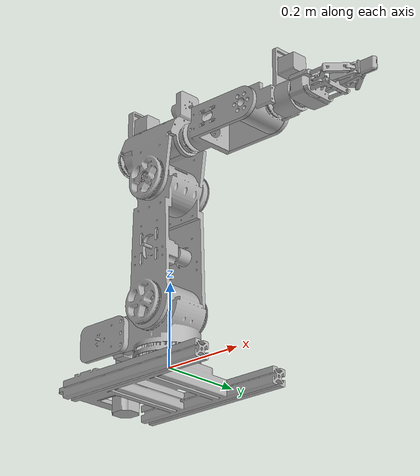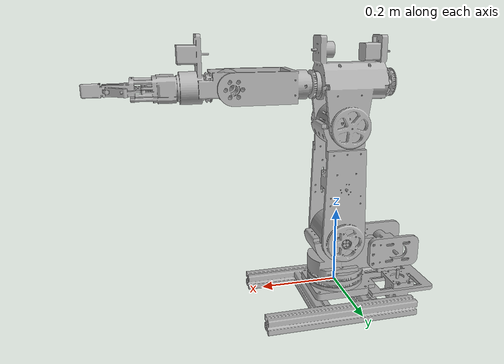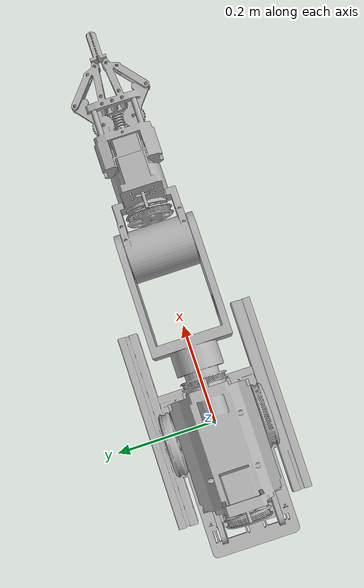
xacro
<?xml version="1.0" ?>
<robot name="urdf_assembly_2" xmlns:xacro="http://www.ros.org/wiki/xacro">

<xacro:include filename="materials.xacro" />
<xacro:include filename="urdf_assembly_2.trans" />
<xacro:include filename="urdf_assembly_2.gazebo" />
<link name="base_link">
  <inertial>
    <origin xyz="-0.0342362509848714 -0.0039161533991028665 -0.02839103797627507" rpy="0 0 0"/>
    <mass value="2.2003666449760275"/>
    <inertia ixx="0.015633" iyy="0.02691" izz="0.040737" ixy="0.000363" iyz="0.000114" ixz="0.001133"/>
  </inertial>
  <visual>
    <origin xyz="0 0 0" rpy="0 0 0"/>
    <geometry>
      <mesh filename="meshes/base_link.stl" scale="0.001 0.001 0.001"/>
    </geometry>
    <material name="silver"/>
  </visual>
  <collision>
    <origin xyz="0 0 0" rpy="0 0 0"/>
    <geometry>
      <mesh filename="meshes/base_link.stl" scale="0.001 0.001 0.001"/>
    </geometry>
  </collision>
</link>

<link name="link_1_1">
  <inertial>
    <origin xyz="-0.03473888377200399 0.0006648494543459067 0.07800139222078076" rpy="0 0 0"/>
    <mass value="15.038966546923882"/>
    <inertia ixx="0.05038" iyy="0.107214" izz="0.097015" ixy="0.001073" iyz="-0.000117" ixz="0.005378"/>
  </inertial>
  <visual>
    <origin xyz="0.002859 0.005179 0.00232" rpy="0 0 0"/>
    <geometry>
      <mesh filename="meshes/link_1_1.stl" scale="0.001 0.001 0.001"/>
    </geometry>
    <material name="silver"/>
  </visual>
  <collision>
    <origin xyz="0.002859 0.005179 0.00232" rpy="0 0 0"/>
    <geometry>
      <mesh filename="meshes/link_1_1.stl" scale="0.001 0.001 0.001"/>
    </geometry>
  </collision>
</link>

<link name="link_2_1">
  <inertial>
    <origin xyz="2.601990558093962e-05 -0.0008884927878232626 0.13687536190298447" rpy="0 0 0"/>
    <mass value="12.313102715674546"/>
    <inertia ixx="0.196874" iyy="0.179594" izz="0.037663" ixy="-0.0" iyz="-0.000195" ixz="-5.2e-05"/>
  </inertial>
  <visual>
    <origin xyz="0.002859 0.005179 -0.13368" rpy="0 0 0"/>
    <geometry>
      <mesh filename="meshes/link_2_1.stl" scale="0.001 0.001 0.001"/>
    </geometry>
    <material name="silver"/>
  </visual>
  <collision>
    <origin xyz="0.002859 0.005179 -0.13368" rpy="0 0 0"/>
    <geometry>
      <mesh filename="meshes/link_2_1.stl" scale="0.001 0.001 0.001"/>
    </geometry>
  </collision>
</link>

<link name="link_3_1">
  <inertial>
    <origin xyz="-0.01628301021334254 0.00016122524353749754 0.07497927196563697" rpy="0 0 0"/>
    <mass value="9.121346283290388"/>
    <inertia ixx="0.062586" iyy="0.063998" izz="0.038355" ixy="-2.5e-05" iyz="0.000107" ixz="0.007821"/>
  </inertial>
  <visual>
    <origin xyz="0.002698 0.005179 -0.432846" rpy="0 0 0"/>
    <geometry>
      <mesh filename="meshes/link_3_1.stl" scale="0.001 0.001 0.001"/>
    </geometry>
    <material name="silver"/>
  </visual>
  <collision>
    <origin xyz="0.002698 0.005179 -0.432846" rpy="0 0 0"/>
    <geometry>
      <mesh filename="meshes/link_3_1.stl" scale="0.001 0.001 0.001"/>
    </geometry>
  </collision>
</link>

<link name="link_4_1">
  <inertial>
    <origin xyz="0.06639448325545491 0.0006371339116822963 -1.5979938389532045e-05" rpy="0 0 0"/>
    <mass value="6.333915973707803"/>
    <inertia ixx="0.010346" iyy="0.102497" izz="0.108204" ixy="-0.000175" iyz="5e-06" ixz="1e-05"/>
  </inertial>
  <visual>
    <origin xyz="-0.057302 0.005179 -0.530733" rpy="0 0 0"/>
    <geometry>
      <mesh filename="meshes/link_4_1.stl" scale="0.001 0.001 0.001"/>
    </geometry>
    <material name="silver"/>
  </visual>
  <collision>
    <origin xyz="-0.057302 0.005179 -0.530733" rpy="0 0 0"/>
    <geometry>
      <mesh filename="meshes/link_4_1.stl" scale="0.001 0.001 0.001"/>
    </geometry>
  </collision>
</link>

<link name="link_5_1">
  <inertial>
    <origin xyz="0.05519576996196435 8.727471742780296e-08 0.020926890757093308" rpy="0 0 0"/>
    <mass value="3.395965317211299"/>
    <inertia ixx="0.007088" iyy="0.011532" izz="0.008294" ixy="0.0" iyz="-0.0" ixz="-0.002334"/>
  </inertial>
  <visual>
    <origin xyz="-0.274302 0.005096 -0.530663" rpy="0 0 0"/>
    <geometry>
      <mesh filename="meshes/link_5_1.stl" scale="0.001 0.001 0.001"/>
    </geometry>
    <material name="silver"/>
  </visual>
  <collision>
    <origin xyz="-0.274302 0.005096 -0.530663" rpy="0 0 0"/>
    <geometry>
      <mesh filename="meshes/link_5_1.stl" scale="0.001 0.001 0.001"/>
    </geometry>
  </collision>
</link>

<link name="link_6_1">
  <inertial>
    <origin xyz="-0.003933804309610656 1.3555235880025746e-07 -2.1343392964112695e-07" rpy="0 0 0"/>
    <mass value="0.19190462961219334"/>
    <inertia ixx="9.1e-05" iyy="5.2e-05" izz="5.2e-05" ixy="0.0" iyz="-0.0" ixz="-0.0"/>
  </inertial>
  <visual>
    <origin xyz="-0.391802 0.005096 -0.530663" rpy="0 0 0"/>
    <geometry>
      <mesh filename="meshes/link_6_1.stl" scale="0.001 0.001 0.001"/>
    </geometry>
    <material name="silver"/>
  </visual>
  <collision>
    <origin xyz="-0.391802 0.005096 -0.530663" rpy="0 0 0"/>
    <geometry>
      <mesh filename="meshes/link_6_1.stl" scale="0.001 0.001 0.001"/>
    </geometry>
  </collision>
</link>

<link name="link_7_1">
  <inertial>
    <origin xyz="0.05912945593498742 9.350275258987462e-07 -0.0011405877959500543" rpy="0 0 0"/>
    <mass value="2.520414679263601"/>
    <inertia ixx="0.001981" iyy="0.006996" izz="0.007915" ixy="1e-06" iyz="0.0" ixz="-9.8e-05"/>
  </inertial>
  <visual>
    <origin xyz="-0.396802 0.005096 -0.530663" rpy="0 0 0"/>
    <geometry>
      <mesh filename="meshes/link_7_1.stl" scale="0.001 0.001 0.001"/>
    </geometry>
    <material name="silver"/>
  </visual>
  <collision>
    <origin xyz="-0.396802 0.005096 -0.530663" rpy="0 0 0"/>
    <geometry>
      <mesh filename="meshes/link_7_1.stl" scale="0.001 0.001 0.001"/>
    </geometry>
  </collision>
</link>

<joint name="joint_1" type="revolute">
  <origin xyz="-0.002859 -0.005179 -0.00232" rpy="0 0 0"/>
  <parent link="base_link"/>
  <child link="link_1_1"/>
  <axis xyz="0.0 0.0 1.0"/>
  <limit upper="2.094395" lower="-2.094395" effort="100" velocity="100"/>
</joint>

<joint name="joint_2" type="revolute">
  <origin xyz="0.0 0.0 0.136" rpy="0 0 0"/>
  <parent link="link_1_1"/>
  <child link="link_2_1"/>
  <axis xyz="-0.0 -1.0 -0.0"/>
  <limit upper="0.947714" lower="-1.570796" effort="100" velocity="100"/>
</joint>

<joint name="joint_3" type="revolute">
  <origin xyz="0.000161 0.0 0.299166" rpy="0 0 0"/>
  <parent link="link_2_1"/>
  <child link="link_3_1"/>
  <axis xyz="-0.0 -1.0 0.0"/>
  <limit upper="1.570796" lower="-1.570796" effort="100" velocity="100"/>
</joint>

<joint name="joint_4" type="revolute">
  <origin xyz="0.06 0.0 0.097887" rpy="0 0 0"/>
  <parent link="link_3_1"/>
  <child link="link_4_1"/>
  <axis xyz="1.0 -0.0 0.0"/>
  <limit upper="3.141593" lower="-3.141593" effort="100" velocity="100"/>
</joint>

<joint name="joint_5" type="revolute">
  <origin xyz="0.217 8.3e-05 -7e-05" rpy="0 0 0"/>
  <parent link="link_4_1"/>
  <child link="link_5_1"/>
  <axis xyz="-0.0 -1.0 0.0"/>
  <limit upper="2.007129" lower="-2.356194" effort="100" velocity="100"/>
</joint>

<joint name="joint_6" type="revolute">
  <origin xyz="0.1175 0.0 0.0" rpy="0 0 0"/>
  <parent link="link_5_1"/>
  <child link="link_6_1"/>
  <axis xyz="1.0 0.0 0.0"/>
  <limit upper="3.141593" lower="-3.141593" effort="100" velocity="100"/>
</joint>

<joint name="joint_7" type="fixed">
  <origin xyz="0.005 0.0 0.0" rpy="0 0 0"/>
  <parent link="link_6_1"/>
  <child link="link_7_1"/>
</joint>

</robot>

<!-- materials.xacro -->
<robot name="urdf_assembly_2" xmlns:xacro="http://www.ros.org/wiki/xacro" >

<material name="silver">
  <color rgba="0.700 0.700 0.700 1.000"/>
</material>

</robot>

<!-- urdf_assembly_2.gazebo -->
<robot name="urdf_assembly_2" xmlns:xacro="http://www.ros.org/wiki/xacro" >

<xacro:property name="body_color" value="Gazebo/Silver" />

<gazebo>
  <plugin name="control" filename="libgazebo_ros_control.so"/>
</gazebo>
<gazebo reference="base_link">
  <material>${body_color}</material>
  <mu1>0.2</mu1>
  <mu2>0.2</mu2>
  <selfCollide>true</selfCollide>
  <gravity>true</gravity>
</gazebo>

<gazebo reference="link_1_1">
  <material>${body_color}</material>
  <mu1>0.2</mu1>
  <mu2>0.2</mu2>
  <selfCollide>true</selfCollide>
</gazebo>

<gazebo reference="link_2_1">
  <material>${body_color}</material>
  <mu1>0.2</mu1>
  <mu2>0.2</mu2>
  <selfCollide>true</selfCollide>
</gazebo>

<gazebo reference="link_3_1">
  <material>${body_color}</material>
  <mu1>0.2</mu1>
  <mu2>0.2</mu2>
  <selfCollide>true</selfCollide>
</gazebo>

<gazebo reference="link_4_1">
  <material>${body_color}</material>
  <mu1>0.2</mu1>
  <mu2>0.2</mu2>
  <selfCollide>true</selfCollide>
</gazebo>

<gazebo reference="link_5_1">
  <material>${body_color}</material>
  <mu1>0.2</mu1>
  <mu2>0.2</mu2>
  <selfCollide>true</selfCollide>
</gazebo>

<gazebo reference="link_6_1">
  <material>${body_color}</material>
  <mu1>0.2</mu1>
  <mu2>0.2</mu2>
  <selfCollide>true</selfCollide>
</gazebo>

<gazebo reference="link_7_1">
  <material>${body_color}</material>
  <mu1>0.2</mu1>
  <mu2>0.2</mu2>
  <selfCollide>true</selfCollide>
</gazebo>

</robot>
